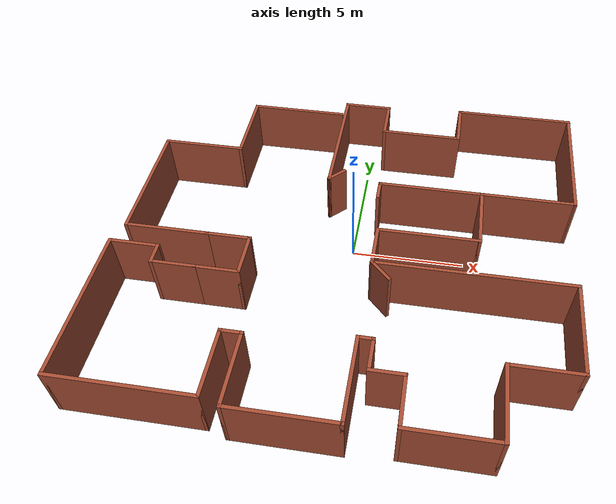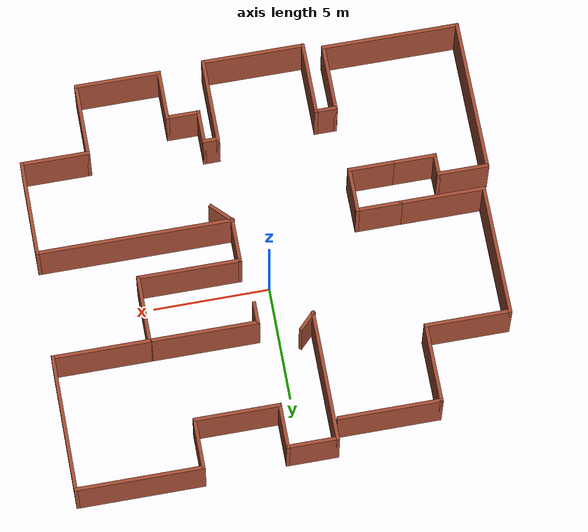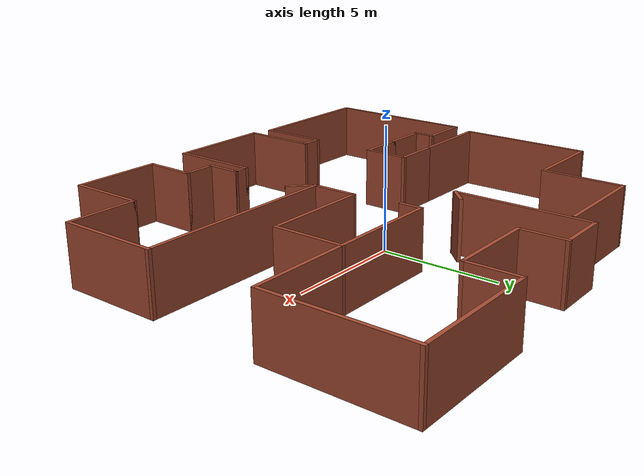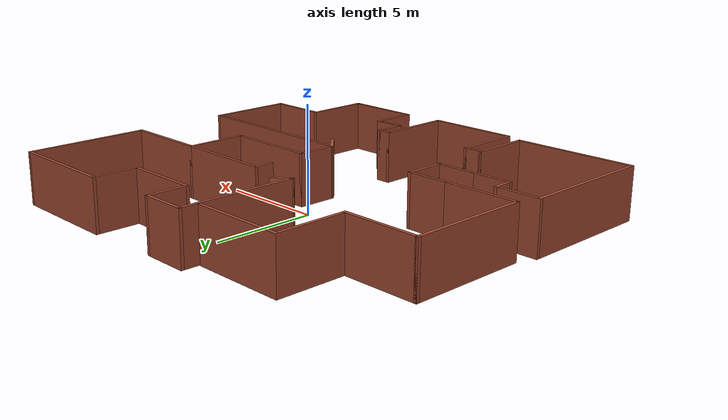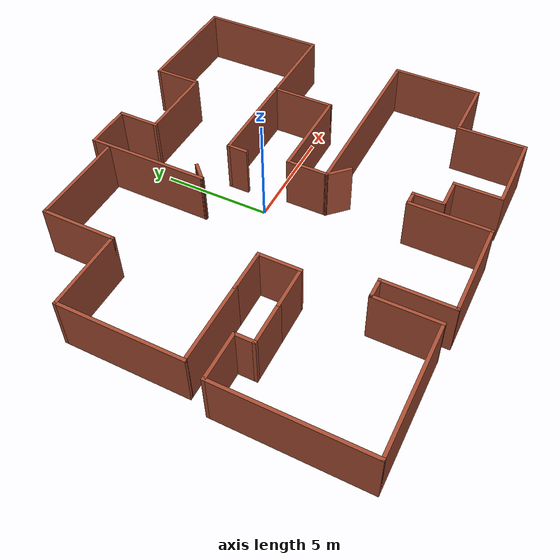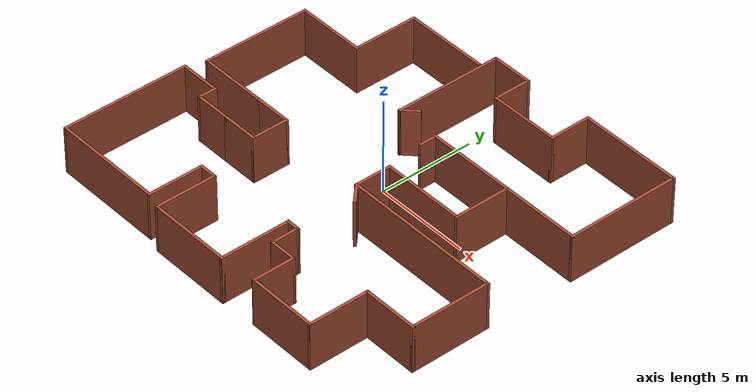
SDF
<?xml version='1.0'?>
<sdf version='1.6'>
  <model name='map_115'>
    <pose frame=''>-0.183379 -0.899907 0 0 -0 0</pose>
    <link name='Wall_16'>
      <collision name='Wall_16_Collision'>
        <geometry>
          <box>
            <size>6 0.15 2.5</size>
          </box>
        </geometry>
        <pose frame=''>0 0 1.25 0 -0 0</pose>
      </collision>
      <visual name='Wall_16_Visual'>
        <pose frame=''>0 0 1.25 0 -0 0</pose>
        <geometry>
          <box>
            <size>6 0.15 2.5</size>
          </box>
        </geometry>
        <material>
          <script>
            <uri>file://media/materials/scripts/gazebo.material</uri>
            <name>Gazebo/Bricks</name>
          </script>
          <ambient>1 1 1 1</ambient>
        </material>
        <meta>
          <layer>0</layer>
        </meta>
      </visual>
      <pose frame=''>-6.85 -8.7 0 0 -0 0</pose>
    </link>
    <link name='Wall_17'>
      <collision name='Wall_17_Collision'>
        <geometry>
          <box>
            <size>3 0.15 2.5</size>
          </box>
        </geometry>
        <pose frame=''>0 0 1.25 0 -0 0</pose>
      </collision>
      <visual name='Wall_17_Visual'>
        <pose frame=''>0 0 1.25 0 -0 0</pose>
        <geometry>
          <box>
            <size>3 0.15 2.5</size>
          </box>
        </geometry>
        <material>
          <script>
            <uri>file://media/materials/scripts/gazebo.material</uri>
            <name>Gazebo/Bricks</name>
          </script>
          <ambient>1 1 1 1</ambient>
        </material>
        <meta>
          <layer>0</layer>
        </meta>
      </visual>
      <pose frame=''>-3.925 -7.275 0 0 -0 1.5708</pose>
    </link>
    <link name='Wall_18'>
      <collision name='Wall_18_Collision'>
        <geometry>
          <box>
            <size>1 0.15 2.5</size>
          </box>
        </geometry>
        <pose frame=''>0 0 1.25 0 -0 0</pose>
      </collision>
      <visual name='Wall_18_Visual'>
        <pose frame=''>0 0 1.25 0 -0 0</pose>
        <geometry>
          <box>
            <size>1 0.15 2.5</size>
          </box>
        </geometry>
        <material>
          <script>
            <uri>file://media/materials/scripts/gazebo.material</uri>
            <name>Gazebo/Bricks</name>
          </script>
          <ambient>1 1 1 1</ambient>
        </material>
        <meta>
          <layer>0</layer>
        </meta>
      </visual>
      <pose frame=''>-3.5 -5.85 0 0 -0 0</pose>
    </link>
    <link name='Wall_19'>
      <collision name='Wall_19_Collision'>
        <geometry>
          <box>
            <size>3.25 0.15 2.5</size>
          </box>
        </geometry>
        <pose frame=''>0 0 1.25 0 -0 0</pose>
      </collision>
      <visual name='Wall_19_Visual'>
        <pose frame=''>0 0 1.25 0 -0 0</pose>
        <geometry>
          <box>
            <size>3.25 0.15 2.5</size>
          </box>
        </geometry>
        <material>
          <script>
            <uri>file://media/materials/scripts/gazebo.material</uri>
            <name>Gazebo/Bricks</name>
          </script>
          <ambient>1 1 1 1</ambient>
        </material>
        <meta>
          <layer>0</layer>
        </meta>
      </visual>
      <pose frame=''>-3.075 -7.4 0 0 -0 -1.5708</pose>
    </link>
    <link name='Wall_20'>
      <collision name='Wall_20_Collision'>
        <geometry>
          <box>
            <size>4.5 0.15 2.5</size>
          </box>
        </geometry>
        <pose frame=''>0 0 1.25 0 -0 0</pose>
      </collision>
      <visual name='Wall_20_Visual'>
        <pose frame=''>0 0 1.25 0 -0 0</pose>
        <geometry>
          <box>
            <size>4.5 0.15 2.5</size>
          </box>
        </geometry>
        <material>
          <script>
            <uri>file://media/materials/scripts/gazebo.material</uri>
            <name>Gazebo/Bricks</name>
          </script>
          <ambient>1 1 1 1</ambient>
        </material>
        <meta>
          <layer>0</layer>
        </meta>
      </visual>
      <pose frame=''>-0.9 -8.95 0 0 -0 0</pose>
    </link>
    <link name='Wall_21'>
      <collision name='Wall_21_Collision'>
        <geometry>
          <box>
            <size>3.75 0.15 2.5</size>
          </box>
        </geometry>
        <pose frame=''>0 0 1.25 0 -0 0</pose>
      </collision>
      <visual name='Wall_21_Visual'>
        <pose frame=''>0 0 1.25 0 -0 0</pose>
        <geometry>
          <box>
            <size>3.75 0.15 2.5</size>
          </box>
        </geometry>
        <material>
          <script>
            <uri>file://media/materials/scripts/gazebo.material</uri>
            <name>Gazebo/Bricks</name>
          </script>
          <ambient>1 1 1 1</ambient>
        </material>
        <meta>
          <layer>0</layer>
        </meta>
      </visual>
      <pose frame=''>1.275 -7.15 0 0 -0 1.5708</pose>
    </link>
    <link name='Wall_22'>
      <collision name='Wall_22_Collision'>
        <geometry>
          <box>
            <size>0.75 0.15 2.5</size>
          </box>
        </geometry>
        <pose frame=''>0 0 1.25 0 -0 0</pose>
      </collision>
      <visual name='Wall_22_Visual'>
        <pose frame=''>0 0 1.25 0 -0 0</pose>
        <geometry>
          <box>
            <size>0.75 0.15 2.5</size>
          </box>
        </geometry>
        <material>
          <script>
            <uri>file://media/materials/scripts/gazebo.material</uri>
            <name>Gazebo/Bricks</name>
          </script>
          <ambient>1 1 1 1</ambient>
        </material>
        <meta>
          <layer>0</layer>
        </meta>
      </visual>
      <pose frame=''>1.575 -5.35 0 0 -0 0</pose>
    </link>
    <link name='Wall_23'>
      <collision name='Wall_23_Collision'>
        <geometry>
          <box>
            <size>1.5 0.15 2.5</size>
          </box>
        </geometry>
        <pose frame=''>0 0 1.25 0 -0 0</pose>
      </collision>
      <visual name='Wall_23_Visual'>
        <pose frame=''>0 0 1.25 0 -0 0</pose>
        <geometry>
          <box>
            <size>1.5 0.15 2.5</size>
          </box>
        </geometry>
        <material>
          <script>
            <uri>file://media/materials/scripts/gazebo.material</uri>
            <name>Gazebo/Bricks</name>
          </script>
          <ambient>1 1 1 1</ambient>
        </material>
        <meta>
          <layer>0</layer>
        </meta>
      </visual>
      <pose frame=''>1.875 -6.025 0 0 -0 -1.5708</pose>
    </link>
    <link name='Wall_24'>
      <collision name='Wall_24_Collision'>
        <geometry>
          <box>
            <size>1.5 0.15 2.5</size>
          </box>
        </geometry>
        <pose frame=''>0 0 1.25 0 -0 0</pose>
      </collision>
      <visual name='Wall_24_Visual'>
        <pose frame=''>0 0 1.25 0 -0 0</pose>
        <geometry>
          <box>
            <size>1.5 0.15 2.5</size>
          </box>
        </geometry>
        <material>
          <script>
            <uri>file://media/materials/scripts/gazebo.material</uri>
            <name>Gazebo/Bricks</name>
          </script>
          <ambient>1 1 1 1</ambient>
        </material>
        <meta>
          <layer>0</layer>
        </meta>
      </visual>
      <pose frame=''>2.55 -6.7 0 0 -0 0</pose>
    </link>
    <link name='Wall_25'>
      <collision name='Wall_25_Collision'>
        <geometry>
          <box>
            <size>2.25 0.15 2.5</size>
          </box>
        </geometry>
        <pose frame=''>0 0 1.25 0 -0 0</pose>
      </collision>
      <visual name='Wall_25_Visual'>
        <pose frame=''>0 0 1.25 0 -0 0</pose>
        <geometry>
          <box>
            <size>2.25 0.15 2.5</size>
          </box>
        </geometry>
        <material>
          <script>
            <uri>file://media/materials/scripts/gazebo.material</uri>
            <name>Gazebo/Bricks</name>
          </script>
          <ambient>1 1 1 1</ambient>
        </material>
        <meta>
          <layer>0</layer>
        </meta>
      </visual>
      <pose frame=''>3.225 -7.75 0 0 -0 -1.5708</pose>
    </link>
    <link name='Wall_26'>
      <collision name='Wall_26_Collision'>
        <geometry>
          <box>
            <size>3.75 0.15 2.5</size>
          </box>
        </geometry>
        <pose frame=''>0 0 1.25 0 -0 0</pose>
      </collision>
      <visual name='Wall_26_Visual'>
        <pose frame=''>0 0 1.25 0 -0 0</pose>
        <geometry>
          <box>
            <size>3.75 0.15 2.5</size>
          </box>
        </geometry>
        <material>
          <script>
            <uri>file://media/materials/scripts/gazebo.material</uri>
            <name>Gazebo/Bricks</name>
          </script>
          <ambient>1 1 1 1</ambient>
        </material>
        <meta>
          <layer>0</layer>
        </meta>
      </visual>
      <pose frame=''>5.025 -8.8 0 0 -0 0</pose>
    </link>
    <link name='Wall_27'>
      <collision name='Wall_27_Collision'>
        <geometry>
          <box>
            <size>3.25 0.15 2.5</size>
          </box>
        </geometry>
        <pose frame=''>0 0 1.25 0 -0 0</pose>
      </collision>
      <visual name='Wall_27_Visual'>
        <pose frame=''>0 0 1.25 0 -0 0</pose>
        <geometry>
          <box>
            <size>3.25 0.15 2.5</size>
          </box>
        </geometry>
        <material>
          <script>
            <uri>file://media/materials/scripts/gazebo.material</uri>
            <name>Gazebo/Bricks</name>
          </script>
          <ambient>1 1 1 1</ambient>
        </material>
        <meta>
          <layer>0</layer>
        </meta>
      </visual>
      <pose frame=''>6.825 -7.25 0 0 -0 1.5708</pose>
    </link>
    <link name='Wall_28'>
      <collision name='Wall_28_Collision'>
        <geometry>
          <box>
            <size>3 0.15 2.5</size>
          </box>
        </geometry>
        <pose frame=''>0 0 1.25 0 -0 0</pose>
      </collision>
      <visual name='Wall_28_Visual'>
        <pose frame=''>0 0 1.25 0 -0 0</pose>
        <geometry>
          <box>
            <size>3 0.15 2.5</size>
          </box>
        </geometry>
        <material>
          <script>
            <uri>file://media/materials/scripts/gazebo.material</uri>
            <name>Gazebo/Bricks</name>
          </script>
          <ambient>1 1 1 1</ambient>
        </material>
        <meta>
          <layer>0</layer>
        </meta>
      </visual>
      <pose frame=''>8.25 -5.7 0 0 -0 0</pose>
    </link>
    <link name='Wall_3'>
      <collision name='Wall_3_Collision'>
        <geometry>
          <box>
            <size>5.75 0.15 2.5</size>
          </box>
        </geometry>
        <pose frame=''>0 0 1.25 0 -0 0</pose>
      </collision>
      <visual name='Wall_3_Visual'>
        <pose frame=''>0 0 1.25 0 -0 0</pose>
        <geometry>
          <box>
            <size>5.75 0.15 2.5</size>
          </box>
        </geometry>
        <material>
          <script>
            <uri>file://media/materials/scripts/gazebo.material</uri>
            <name>Gazebo/Bricks</name>
          </script>
          <ambient>1 1 1 1</ambient>
        </material>
        <meta>
          <layer>0</layer>
        </meta>
      </visual>
      <pose frame=''>-9.425 1.7 0 0 -0 -1.5708</pose>
    </link>
    <link name='Wall_32'>
      <collision name='Wall_32_Collision'>
        <geometry>
          <box>
            <size>4.25 0.15 2.5</size>
          </box>
        </geometry>
        <pose frame=''>0 0 1.25 0 -0 0</pose>
      </collision>
      <visual name='Wall_32_Visual'>
        <pose frame=''>0 0 1.25 0 -0 0</pose>
        <geometry>
          <box>
            <size>4.25 0.15 2.5</size>
          </box>
        </geometry>
        <material>
          <script>
            <uri>file://media/materials/scripts/gazebo.material</uri>
            <name>Gazebo/Bricks</name>
          </script>
          <ambient>1 1 1 1</ambient>
        </material>
        <meta>
          <layer>0</layer>
        </meta>
      </visual>
      <pose frame=''>9.675 -3.65 0 0 -0 1.5708</pose>
    </link>
    <link name='Wall_33'>
      <collision name='Wall_33_Collision'>
        <geometry>
          <box>
            <size>8.5 0.15 2.5</size>
          </box>
        </geometry>
        <pose frame=''>0 0 1.25 0 -0 0</pose>
      </collision>
      <visual name='Wall_33_Visual'>
        <pose frame=''>0 0 1.25 0 -0 0</pose>
        <geometry>
          <box>
            <size>8.5 0.15 2.5</size>
          </box>
        </geometry>
        <material>
          <script>
            <uri>file://media/materials/scripts/gazebo.material</uri>
            <name>Gazebo/Bricks</name>
          </script>
          <ambient>1 1 1 1</ambient>
        </material>
        <meta>
          <layer>0</layer>
        </meta>
      </visual>
      <pose frame=''>5.5 -1.6 0 0 -0 3.14159</pose>
    </link>
    <link name='Wall_34'>
      <collision name='Wall_34_Collision'>
        <geometry>
          <box>
            <size>1.25 0.15 2.5</size>
          </box>
        </geometry>
        <pose frame=''>0 0 1.25 0 -0 0</pose>
      </collision>
      <visual name='Wall_34_Visual'>
        <pose frame=''>0 0 1.25 0 -0 0</pose>
        <geometry>
          <box>
            <size>1.25 0.15 2.5</size>
          </box>
        </geometry>
        <material>
          <script>
            <uri>file://media/materials/scripts/gazebo.material</uri>
            <name>Gazebo/Bricks</name>
          </script>
          <ambient>1 1 1 1</ambient>
        </material>
        <meta>
          <layer>0</layer>
        </meta>
      </visual>
      <pose frame=''>1.71391 -1.98891 0 0 -0 -0.785398</pose>
    </link>
    <link name='Wall_36'>
      <collision name='Wall_36_Collision'>
        <geometry>
          <box>
            <size>2 0.15 2.5</size>
          </box>
        </geometry>
        <pose frame=''>0 0 1.25 0 -0 0</pose>
      </collision>
      <visual name='Wall_36_Visual'>
        <pose frame=''>0 0 1.25 0 -0 0</pose>
        <geometry>
          <box>
            <size>2 0.15 2.5</size>
          </box>
        </geometry>
        <material>
          <script>
            <uri>file://media/materials/scripts/gazebo.material</uri>
            <name>Gazebo/Bricks</name>
          </script>
          <ambient>1 1 1 1</ambient>
        </material>
        <meta>
          <layer>0</layer>
        </meta>
      </visual>
      <pose frame=''>1.325 -0.675 0 0 -0 1.5708</pose>
    </link>
    <link name='Wall_37'>
      <collision name='Wall_37_Collision'>
        <geometry>
          <box>
            <size>4.5 0.15 2.5</size>
          </box>
        </geometry>
        <pose frame=''>0 0 1.25 0 -0 0</pose>
      </collision>
      <visual name='Wall_37_Visual'>
        <pose frame=''>0 0 1.25 0 -0 0</pose>
        <geometry>
          <box>
            <size>4.5 0.15 2.5</size>
          </box>
        </geometry>
        <material>
          <script>
            <uri>file://media/materials/scripts/gazebo.material</uri>
            <name>Gazebo/Bricks</name>
          </script>
          <ambient>1 1 1 1</ambient>
        </material>
        <meta>
          <layer>0</layer>
        </meta>
      </visual>
      <pose frame=''>3.5 0.25 0 0 -0 0</pose>
    </link>
    <link name='Wall_38'>
      <collision name='Wall_38_Collision'>
        <geometry>
          <box>
            <size>3 0.15 2.5</size>
          </box>
        </geometry>
        <pose frame=''>0 0 1.25 0 -0 0</pose>
      </collision>
      <visual name='Wall_38_Visual'>
        <pose frame=''>0 0 1.25 0 -0 0</pose>
        <geometry>
          <box>
            <size>3 0.15 2.5</size>
          </box>
        </geometry>
        <material>
          <script>
            <uri>file://media/materials/scripts/gazebo.material</uri>
            <name>Gazebo/Bricks</name>
          </script>
          <ambient>1 1 1 1</ambient>
        </material>
        <meta>
          <layer>0</layer>
        </meta>
      </visual>
      <pose frame=''>5.675 1.675 0 0 -0 1.5708</pose>
    </link>
    <link name='Wall_39'>
      <collision name='Wall_39_Collision'>
        <geometry>
          <box>
            <size>4.75 0.15 2.5</size>
          </box>
        </geometry>
        <pose frame=''>0 0 1.25 0 -0 0</pose>
      </collision>
      <visual name='Wall_39_Visual'>
        <pose frame=''>0 0 1.25 0 -0 0</pose>
        <geometry>
          <box>
            <size>4.75 0.15 2.5</size>
          </box>
        </geometry>
        <material>
          <script>
            <uri>file://media/materials/scripts/gazebo.material</uri>
            <name>Gazebo/Bricks</name>
          </script>
          <ambient>1 1 1 1</ambient>
        </material>
        <meta>
          <layer>0</layer>
        </meta>
      </visual>
      <pose frame=''>3.375 3.1 0 0 -0 3.14159</pose>
    </link>
    <link name='Wall_4'>
      <collision name='Wall_4_Collision'>
        <geometry>
          <box>
            <size>3.75 0.15 2.5</size>
          </box>
        </geometry>
        <pose frame=''>0 0 1.25 0 -0 0</pose>
      </collision>
      <visual name='Wall_4_Visual'>
        <pose frame=''>0 0 1.25 0 -0 0</pose>
        <geometry>
          <box>
            <size>3.75 0.15 2.5</size>
          </box>
        </geometry>
        <material>
          <script>
            <uri>file://media/materials/scripts/gazebo.material</uri>
            <name>Gazebo/Bricks</name>
          </script>
          <ambient>1 1 1 1</ambient>
        </material>
        <meta>
          <layer>0</layer>
        </meta>
      </visual>
      <pose frame=''>-7.625 -1.1 0 0 -0 0</pose>
    </link>
    <link name='Wall_42'>
      <collision name='Wall_42_Collision'>
        <geometry>
          <box>
            <size>4.25 0.15 2.5</size>
          </box>
        </geometry>
        <pose frame=''>0 0 1.25 0 -0 0</pose>
      </collision>
      <visual name='Wall_42_Visual'>
        <pose frame=''>0 0 1.25 0 -0 0</pose>
        <geometry>
          <box>
            <size>4.25 0.15 2.5</size>
          </box>
        </geometry>
        <material>
          <script>
            <uri>file://media/materials/scripts/gazebo.material</uri>
            <name>Gazebo/Bricks</name>
          </script>
          <ambient>1 1 1 1</ambient>
        </material>
        <meta>
          <layer>0</layer>
        </meta>
      </visual>
      <pose frame=''>7.725 3.1 0 0 -0 0</pose>
    </link>
    <link name='Wall_43'>
      <collision name='Wall_43_Collision'>
        <geometry>
          <box>
            <size>6 0.15 2.5</size>
          </box>
        </geometry>
        <pose frame=''>0 0 1.25 0 -0 0</pose>
      </collision>
      <visual name='Wall_43_Visual'>
        <pose frame=''>0 0 1.25 0 -0 0</pose>
        <geometry>
          <box>
            <size>6 0.15 2.5</size>
          </box>
        </geometry>
        <material>
          <script>
            <uri>file://media/materials/scripts/gazebo.material</uri>
            <name>Gazebo/Bricks</name>
          </script>
          <ambient>1 1 1 1</ambient>
        </material>
        <meta>
          <layer>0</layer>
        </meta>
      </visual>
      <pose frame=''>9.775 6.025 0 0 -0 1.5708</pose>
    </link>
    <link name='Wall_44'>
      <collision name='Wall_44_Collision'>
        <geometry>
          <box>
            <size>5.5 0.15 2.5</size>
          </box>
        </geometry>
        <pose frame=''>0 0 1.25 0 -0 0</pose>
      </collision>
      <visual name='Wall_44_Visual'>
        <pose frame=''>0 0 1.25 0 -0 0</pose>
        <geometry>
          <box>
            <size>5.5 0.15 2.5</size>
          </box>
        </geometry>
        <material>
          <script>
            <uri>file://media/materials/scripts/gazebo.material</uri>
            <name>Gazebo/Bricks</name>
          </script>
          <ambient>1 1 1 1</ambient>
        </material>
        <meta>
          <layer>0</layer>
        </meta>
      </visual>
      <pose frame=''>7.1 8.95 0 0 -0 3.14159</pose>
    </link>
    <link name='Wall_45'>
      <collision name='Wall_45_Collision'>
        <geometry>
          <box>
            <size>2.25 0.15 2.5</size>
          </box>
        </geometry>
        <pose frame=''>0 0 1.25 0 -0 0</pose>
      </collision>
      <visual name='Wall_45_Visual'>
        <pose frame=''>0 0 1.25 0 -0 0</pose>
        <geometry>
          <box>
            <size>2.25 0.15 2.5</size>
          </box>
        </geometry>
        <material>
          <script>
            <uri>file://media/materials/scripts/gazebo.material</uri>
            <name>Gazebo/Bricks</name>
          </script>
          <ambient>1 1 1 1</ambient>
        </material>
        <meta>
          <layer>0</layer>
        </meta>
      </visual>
      <pose frame=''>4.425 7.9 0 0 -0 -1.5708</pose>
    </link>
    <link name='Wall_46'>
      <collision name='Wall_46_Collision'>
        <geometry>
          <box>
            <size>3.75 0.15 2.5</size>
          </box>
        </geometry>
        <pose frame=''>0 0 1.25 0 -0 0</pose>
      </collision>
      <visual name='Wall_46_Visual'>
        <pose frame=''>0 0 1.25 0 -0 0</pose>
        <geometry>
          <box>
            <size>3.75 0.15 2.5</size>
          </box>
        </geometry>
        <material>
          <script>
            <uri>file://media/materials/scripts/gazebo.material</uri>
            <name>Gazebo/Bricks</name>
          </script>
          <ambient>1 1 1 1</ambient>
        </material>
        <meta>
          <layer>0</layer>
        </meta>
      </visual>
      <pose frame=''>2.625 6.85 0 0 -0 3.14159</pose>
    </link>
    <link name='Wall_47'>
      <collision name='Wall_47_Collision'>
        <geometry>
          <box>
            <size>2 0.15 2.5</size>
          </box>
        </geometry>
        <pose frame=''>0 0 1.25 0 -0 0</pose>
      </collision>
      <visual name='Wall_47_Visual'>
        <pose frame=''>0 0 1.25 0 -0 0</pose>
        <geometry>
          <box>
            <size>2 0.15 2.5</size>
          </box>
        </geometry>
        <material>
          <script>
            <uri>file://media/materials/scripts/gazebo.material</uri>
            <name>Gazebo/Bricks</name>
          </script>
          <ambient>1 1 1 1</ambient>
        </material>
        <meta>
          <layer>0</layer>
        </meta>
      </visual>
      <pose frame=''>0.825 7.775 0 0 -0 1.5708</pose>
    </link>
    <link name='Wall_48'>
      <collision name='Wall_48_Collision'>
        <geometry>
          <box>
            <size>2.25 0.15 2.5</size>
          </box>
        </geometry>
        <pose frame=''>0 0 1.25 0 -0 0</pose>
      </collision>
      <visual name='Wall_48_Visual'>
        <pose frame=''>0 0 1.25 0 -0 0</pose>
        <geometry>
          <box>
            <size>2.25 0.15 2.5</size>
          </box>
        </geometry>
        <material>
          <script>
            <uri>file://media/materials/scripts/gazebo.material</uri>
            <name>Gazebo/Bricks</name>
          </script>
          <ambient>1 1 1 1</ambient>
        </material>
        <meta>
          <layer>0</layer>
        </meta>
      </visual>
      <pose frame=''>-0.225 8.7 0 0 -0 3.14159</pose>
    </link>
    <link name='Wall_51'>
      <collision name='Wall_51_Collision'>
        <geometry>
          <box>
            <size>5.75 0.15 2.5</size>
          </box>
        </geometry>
        <pose frame=''>0 0 1.25 0 -0 0</pose>
      </collision>
      <visual name='Wall_51_Visual'>
        <pose frame=''>0 0 1.25 0 -0 0</pose>
        <geometry>
          <box>
            <size>5.75 0.15 2.5</size>
          </box>
        </geometry>
        <material>
          <script>
            <uri>file://media/materials/scripts/gazebo.material</uri>
            <name>Gazebo/Bricks</name>
          </script>
          <ambient>1 1 1 1</ambient>
        </material>
        <meta>
          <layer>0</layer>
        </meta>
      </visual>
      <pose frame=''>-1.275 5.9 0 0 -0 -1.5708</pose>
    </link>
    <link name='Wall_52'>
      <collision name='Wall_52_Collision'>
        <geometry>
          <box>
            <size>1 0.15 2.5</size>
          </box>
        </geometry>
        <pose frame=''>0 0 1.25 0 -0 0</pose>
      </collision>
      <visual name='Wall_52_Visual'>
        <pose frame=''>0 0 1.25 0 -0 0</pose>
        <geometry>
          <box>
            <size>1 0.15 2.5</size>
          </box>
        </geometry>
        <material>
          <script>
            <uri>file://media/materials/scripts/gazebo.material</uri>
            <name>Gazebo/Bricks</name>
          </script>
          <ambient>1 1 1 1</ambient>
        </material>
        <meta>
          <layer>0</layer>
        </meta>
      </visual>
      <pose frame=''>-0.97448 3.40052 0 0 -0 0.785398</pose>
    </link>
    <link name='Wall_54'>
      <collision name='Wall_54_Collision'>
        <geometry>
          <box>
            <size>1 0.15 2.5</size>
          </box>
        </geometry>
        <pose frame=''>0 0 1.25 0 -0 0</pose>
      </collision>
      <visual name='Wall_54_Visual'>
        <pose frame=''>0 0 1.25 0 -0 0</pose>
        <geometry>
          <box>
            <size>1 0.15 2.5</size>
          </box>
        </geometry>
        <material>
          <script>
            <uri>file://media/materials/scripts/gazebo.material</uri>
            <name>Gazebo/Bricks</name>
          </script>
          <ambient>1 1 1 1</ambient>
        </material>
        <meta>
          <layer>0</layer>
        </meta>
      </visual>
      <pose frame=''>1.075 2.675 0 0 -0 -1.5708</pose>
    </link>
    <link name='Wall_56'>
      <collision name='Wall_56_Collision'>
        <geometry>
          <box>
            <size>3.75 0.15 2.5</size>
          </box>
        </geometry>
        <pose frame=''>0 0 1.25 0 -0 0</pose>
      </collision>
      <visual name='Wall_56_Visual'>
        <pose frame=''>0 0 1.25 0 -0 0</pose>
        <geometry>
          <box>
            <size>3.75 0.15 2.5</size>
          </box>
        </geometry>
        <material>
          <script>
            <uri>file://media/materials/scripts/gazebo.material</uri>
            <name>Gazebo/Bricks</name>
          </script>
          <ambient>1 1 1 1</ambient>
        </material>
        <meta>
          <layer>0</layer>
        </meta>
      </visual>
      <pose frame=''>-7.625 4.5 0 0 -0 0</pose>
    </link>
    <link name='Wall_57'>
      <collision name='Wall_57_Collision'>
        <geometry>
          <box>
            <size>3.5 0.15 2.5</size>
          </box>
        </geometry>
        <pose frame=''>0 0 1.25 0 -0 0</pose>
      </collision>
      <visual name='Wall_57_Visual'>
        <pose frame=''>0 0 1.25 0 -0 0</pose>
        <geometry>
          <box>
            <size>3.5 0.15 2.5</size>
          </box>
        </geometry>
        <material>
          <script>
            <uri>file://media/materials/scripts/gazebo.material</uri>
            <name>Gazebo/Bricks</name>
          </script>
          <ambient>1 1 1 1</ambient>
        </material>
        <meta>
          <layer>0</layer>
        </meta>
      </visual>
      <pose frame=''>-5.825 6.175 0 0 -0 1.5708</pose>
    </link>
    <link name='Wall_58'>
      <collision name='Wall_58_Collision'>
        <geometry>
          <box>
            <size>4.5 0.15 2.5</size>
          </box>
        </geometry>
        <pose frame=''>0 0 1.25 0 -0 0</pose>
      </collision>
      <visual name='Wall_58_Visual'>
        <pose frame=''>0 0 1.25 0 -0 0</pose>
        <geometry>
          <box>
            <size>4.5 0.15 2.5</size>
          </box>
        </geometry>
        <material>
          <script>
            <uri>file://media/materials/scripts/gazebo.material</uri>
            <name>Gazebo/Bricks</name>
          </script>
          <ambient>1 1 1 1</ambient>
        </material>
        <meta>
          <layer>0</layer>
        </meta>
      </visual>
      <pose frame=''>-3.65 7.85 0 0 -0 0</pose>
    </link>
    <link name='Wall_6'>
      <collision name='Wall_6_Collision'>
        <geometry>
          <box>
            <size>2 0.15 2.5</size>
          </box>
        </geometry>
        <pose frame=''>0 0 1.25 0 -0 0</pose>
      </collision>
      <visual name='Wall_6_Visual'>
        <pose frame=''>0 0 1.25 0 -0 0</pose>
        <geometry>
          <box>
            <size>2 0.15 2.5</size>
          </box>
        </geometry>
        <material>
          <script>
            <uri>file://media/materials/scripts/gazebo.material</uri>
            <name>Gazebo/Bricks</name>
          </script>
          <ambient>1 1 1 1</ambient>
        </material>
        <meta>
          <layer>0</layer>
        </meta>
      </visual>
      <pose frame=''>-6.75 -2.95 0 0 -0 3.14159</pose>
    </link>
    <link name='Wall_60'>
      <collision name='Wall_60_Collision'>
        <geometry>
          <box>
            <size>2 0.15 2.5</size>
          </box>
        </geometry>
        <pose frame=''>0 0 1.25 0 -0 0</pose>
      </collision>
      <visual name='Wall_60_Visual'>
        <pose frame=''>0 0 1.25 0 -0 0</pose>
        <geometry>
          <box>
            <size>2 0.15 2.5</size>
          </box>
        </geometry>
        <material>
          <script>
            <uri>file://media/materials/scripts/gazebo.material</uri>
            <name>Gazebo/Bricks</name>
          </script>
          <ambient>1 1 1 1</ambient>
        </material>
        <meta>
          <layer>0</layer>
        </meta>
      </visual>
      <pose frame=''>-4.9 -2.95 0 0 -0 0</pose>
    </link>
    <link name='Wall_61'>
      <collision name='Wall_61_Collision'>
        <geometry>
          <box>
            <size>2 0.15 2.5</size>
          </box>
        </geometry>
        <pose frame=''>0 0 1.25 0 -0 0</pose>
      </collision>
      <visual name='Wall_61_Visual'>
        <pose frame=''>0 0 1.25 0 -0 0</pose>
        <geometry>
          <box>
            <size>2 0.15 2.5</size>
          </box>
        </geometry>
        <material>
          <script>
            <uri>file://media/materials/scripts/gazebo.material</uri>
            <name>Gazebo/Bricks</name>
          </script>
          <ambient>1 1 1 1</ambient>
        </material>
        <meta>
          <layer>0</layer>
        </meta>
      </visual>
      <pose frame=''>-3.975 -2.025 0 0 -0 1.5708</pose>
    </link>
    <link name='Wall_62'>
      <collision name='Wall_62_Collision'>
        <geometry>
          <box>
            <size>2 0.15 2.5</size>
          </box>
        </geometry>
        <pose frame=''>0 0 1.25 0 -0 0</pose>
      </collision>
      <visual name='Wall_62_Visual'>
        <pose frame=''>0 0 1.25 0 -0 0</pose>
        <geometry>
          <box>
            <size>2 0.15 2.5</size>
          </box>
        </geometry>
        <material>
          <script>
            <uri>file://media/materials/scripts/gazebo.material</uri>
            <name>Gazebo/Bricks</name>
          </script>
          <ambient>1 1 1 1</ambient>
        </material>
        <meta>
          <layer>0</layer>
        </meta>
      </visual>
      <pose frame=''>-4.9 -1.1 0 0 -0 3.14159</pose>
    </link>
    <link name='Wall_7'>
      <collision name='Wall_7_Collision'>
        <geometry>
          <box>
            <size>1 0.15 2.5</size>
          </box>
        </geometry>
        <pose frame=''>0 0 1.25 0 -0 0</pose>
      </collision>
      <visual name='Wall_7_Visual'>
        <pose frame=''>0 0 1.25 0 -0 0</pose>
        <geometry>
          <box>
            <size>1 0.15 2.5</size>
          </box>
        </geometry>
        <material>
          <script>
            <uri>file://media/materials/scripts/gazebo.material</uri>
            <name>Gazebo/Bricks</name>
          </script>
          <ambient>1 1 1 1</ambient>
        </material>
        <meta>
          <layer>0</layer>
        </meta>
      </visual>
      <pose frame=''>-7.675 -2.525 0 0 -0 1.5708</pose>
    </link>
    <link name='Wall_8'>
      <collision name='Wall_8_Collision'>
        <geometry>
          <box>
            <size>2.25 0.15 2.5</size>
          </box>
        </geometry>
        <pose frame=''>0 0 1.25 0 -0 0</pose>
      </collision>
      <visual name='Wall_8_Visual'>
        <pose frame=''>0 0 1.25 0 -0 0</pose>
        <geometry>
          <box>
            <size>2.25 0.15 2.5</size>
          </box>
        </geometry>
        <material>
          <script>
            <uri>file://media/materials/scripts/gazebo.material</uri>
            <name>Gazebo/Bricks</name>
          </script>
          <ambient>1 1 1 1</ambient>
        </material>
        <meta>
          <layer>0</layer>
        </meta>
      </visual>
      <pose frame=''>-8.725 -2.1 0 0 -0 3.14159</pose>
    </link>
    <link name='Wall_9'>
      <collision name='Wall_9_Collision'>
        <geometry>
          <box>
            <size>6.75 0.15 2.5</size>
          </box>
        </geometry>
        <pose frame=''>0 0 1.25 0 -0 0</pose>
      </collision>
      <visual name='Wall_9_Visual'>
        <pose frame=''>0 0 1.25 0 -0 0</pose>
        <geometry>
          <box>
            <size>6.75 0.15 2.5</size>
          </box>
        </geometry>
        <material>
          <script>
            <uri>file://media/materials/scripts/gazebo.material</uri>
            <name>Gazebo/Bricks</name>
          </script>
          <ambient>1 1 1 1</ambient>
        </material>
        <meta>
          <layer>0</layer>
        </meta>
      </visual>
      <pose frame=''>-9.775 -5.4 0 0 -0 -1.5708</pose>
    </link>
    <static>1</static>
  </model>
</sdf>
